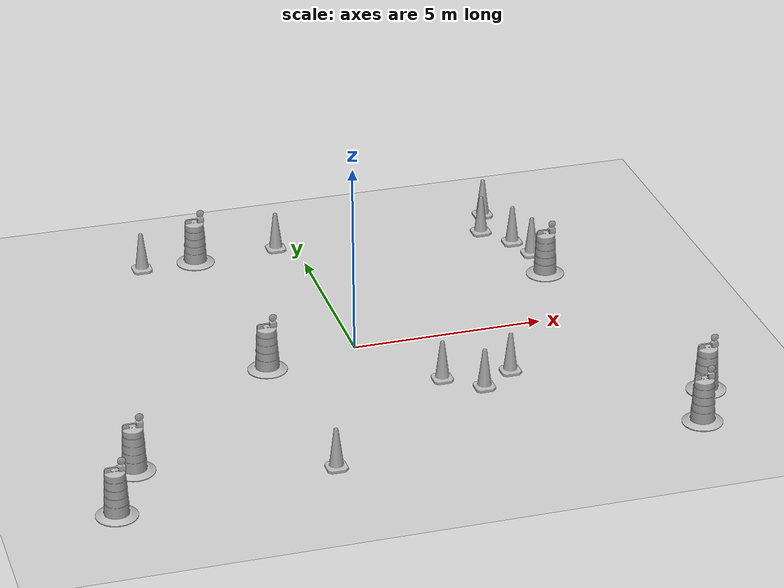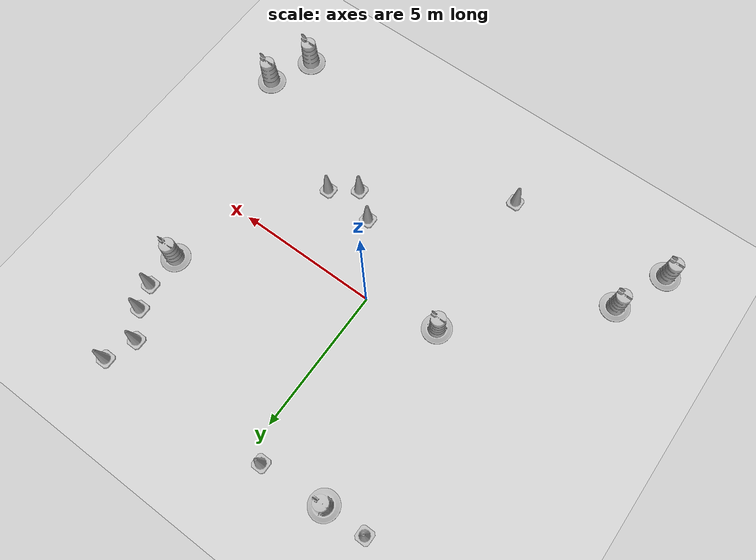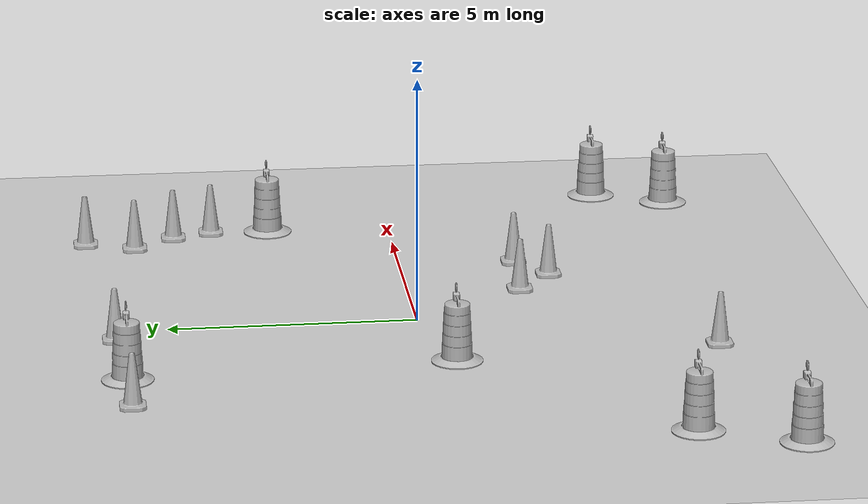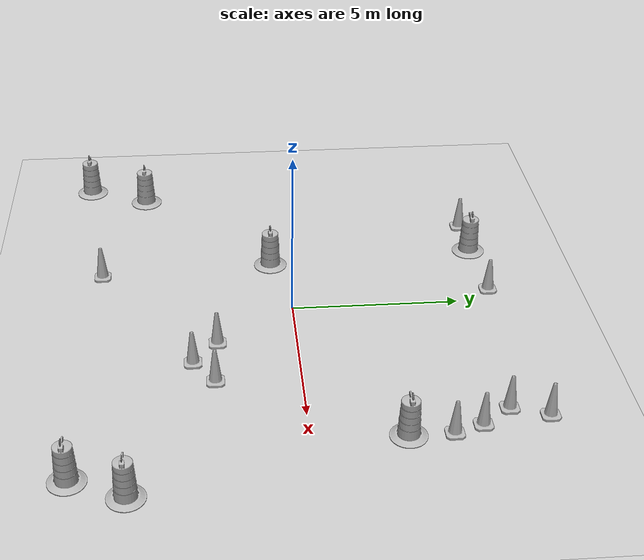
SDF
<sdf version="1.7">
 <world name="default">
  <light name="sun" type="directional">
   <pose>0 0 10 0 -0 0</pose>
   <diffuse>0.8 0.8 0.8 1</diffuse>
   <specular>0.2 0.2 0.2 1</specular>
   <attenuation>
    <range>1000</range>
    <constant>0.9</constant>
    <linear>0.01</linear>
    <quadratic>0.001</quadratic>
   </attenuation>
   <direction>-0.5 0.1 -0.9</direction>
   <spot><inner_angle>0</inner_angle><outer_angle>0</outer_angle><falloff>0</falloff></spot>
  </light>
  <model name="ground_plane">
   <static>1</static>
   <link name="link">
    <collision name="collision">
     <geometry><plane><normal>0 0 1</normal><size>100 100</size></plane></geometry>
     <surface>
      <contact><collide_bitmask>65535</collide_bitmask></contact>
      <friction><ode><mu>100</mu><mu2>50</mu2></ode></friction>
     </surface>
    </collision>
    <visual name="visual">
     <cast_shadows>0</cast_shadows>
     <geometry><plane><normal>0 0 1</normal><size>100 100</size></plane></geometry>
     <material>
      <script><uri>file://media/materials/scripts/gazebo.material</uri><name>Gazebo/Grey</name></script>
     </material>
    </visual>
   </link>
  </model>
  <gravity>0 0 -9.8</gravity>
  <magnetic_field>6e-06 2.3e-05 -4.2e-05</magnetic_field>
  <atmosphere type="adiabatic"/>
  <physics type="ode">
   <max_step_size>0.001</max_step_size>
   <real_time_factor>1</real_time_factor>
   <real_time_update_rate>1000</real_time_update_rate>
  </physics>
  <scene><ambient>0.4 0.4 0.4 1</ambient><background>0.7 0.7 0.7 1</background><shadows>1</shadows></scene>
  <audio><device>default</device></audio>
  <spherical_coordinates>
   <surface_model>EARTH_WGS84</surface_model>
   <latitude_deg>0</latitude_deg>
   <longitude_deg>0</longitude_deg>
   <elevation>0</elevation>
   <heading_deg>0</heading_deg>
  </spherical_coordinates>
  <model name="Construction Barrel">
   <link name="link">
    <inertial>
     <pose>0 0 0.4 0 -0 0</pose>
     <mass>500</mass>
     <inertia><ixx>51.2096</ixx><iyy>51.2096</iyy><izz>25</izz><ixy>0</ixy><ixz>0</ixz><iyz>0</iyz></inertia>
    </inertial>
    <collision name="collision">
     <geometry><mesh><uri>model://construction_barrel/meshes/construction_barrel.dae</uri></mesh></geometry>
    </collision>
    <visual name="visual">
     <geometry><mesh><uri>model://construction_barrel/meshes/construction_barrel.dae</uri></mesh></geometry>
    </visual>
   </link>
   <pose>-2.43061 -0.515248 1e-06 3e-06 2e-06 -2.6e-05</pose>
  </model>
  <model name="Construction Barrel_0">
   <link name="link">
    <inertial>
     <pose>0 0 0.4 0 -0 0</pose>
     <mass>500</mass>
     <inertia><ixx>51.2096</ixx><iyy>51.2096</iyy><izz>25</izz><ixy>0</ixy><ixz>0</ixz><iyz>0</iyz></inertia>
    </inertial>
    <collision name="collision">
     <geometry><mesh><uri>model://construction_barrel/meshes/construction_barrel.dae</uri></mesh></geometry>
    </collision>
    <visual name="visual">
     <geometry><mesh><uri>model://construction_barrel/meshes/construction_barrel.dae</uri></mesh></geometry>
    </visual>
   </link>
   <pose>6.02642 2.56673 1e-06 3e-06 2e-06 -2.5e-05</pose>
  </model>
  <model name="Construction Cone">
   <link name="link">
    <collision name="collision">
     <geometry>
      <mesh><scale>10 10 10</scale><uri>model://construction_cone/meshes/construction_cone.dae</uri></mesh>
     </geometry>
    </collision>
    <visual name="visual">
     <geometry>
      <mesh><scale>10 10 10</scale><uri>model://construction_cone/meshes/construction_cone.dae</uri></mesh>
     </geometry>
    </visual>
    <inertial>
     <inertia><ixx>1</ixx><ixy>0</ixy><ixz>0</ixz><iyy>1</iyy><iyz>0</iyz><izz>1</izz></inertia>
     <mass>1</mass>
    </inertial>
   </link>
   <pose>3.41913 -2.38692 -0 0 -0 0</pose>
  </model>
  <model name="Construction Cone_0">
   <link name="link">
    <collision name="collision">
     <geometry>
      <mesh><scale>10 10 10</scale><uri>model://construction_cone/meshes/construction_cone.dae</uri></mesh>
     </geometry>
    </collision>
    <visual name="visual">
     <geometry>
      <mesh><scale>10 10 10</scale><uri>model://construction_cone/meshes/construction_cone.dae</uri></mesh>
     </geometry>
    </visual>
    <inertial>
     <inertia><ixx>1</ixx><ixy>0</ixy><ixz>0</ixz><iyy>1</iyy><iyz>0</iyz><izz>1</izz></inertia>
     <mass>1</mass>
    </inertial>
   </link>
   <pose>1.65296 -2.28962 -0 0 -0 0</pose>
  </model>
  <model name="Construction Cone_1">
   <link name="link">
    <collision name="collision">
     <geometry>
      <mesh><scale>10 10 10</scale><uri>model://construction_cone/meshes/construction_cone.dae</uri></mesh>
     </geometry>
    </collision>
    <visual name="visual">
     <geometry>
      <mesh><scale>10 10 10</scale><uri>model://construction_cone/meshes/construction_cone.dae</uri></mesh>
     </geometry>
    </visual>
    <inertial>
     <inertia><ixx>1</ixx><ixy>0</ixy><ixz>0</ixz><iyy>1</iyy><iyz>0</iyz><izz>1</izz></inertia>
     <mass>1</mass>
    </inertial>
   </link>
   <pose>-2.05495 -5.76417 -4e-06 4e-06 -1e-06 0</pose>
  </model>
  <model name="Construction Cone_2">
   <link name="link">
    <collision name="collision">
     <geometry>
      <mesh><scale>10 10 10</scale><uri>model://construction_cone/meshes/construction_cone.dae</uri></mesh>
     </geometry>
    </collision>
    <visual name="visual">
     <geometry>
      <mesh><scale>10 10 10</scale><uri>model://construction_cone/meshes/construction_cone.dae</uri></mesh>
     </geometry>
    </visual>
    <inertial>
     <inertia><ixx>1</ixx><ixy>0</ixy><ixz>0</ixz><iyy>1</iyy><iyz>0</iyz><izz>1</izz></inertia>
     <mass>1</mass>
    </inertial>
   </link>
   <pose>-0.540461 6.05297 -0 0 -0 0</pose>
  </model>
  <model name="Construction Barrel_1">
   <link name="link">
    <inertial>
     <pose>0 0 0.4 0 -0 0</pose>
     <mass>500</mass>
     <inertia><ixx>51.2096</ixx><iyy>51.2096</iyy><izz>25</izz><ixy>0</ixy><ixz>0</ixz><iyz>0</iyz></inertia>
    </inertial>
    <collision name="collision">
     <geometry><mesh><uri>model://construction_barrel/meshes/construction_barrel.dae</uri></mesh></geometry>
    </collision>
    <visual name="visual">
     <geometry><mesh><uri>model://construction_barrel/meshes/construction_barrel.dae</uri></mesh></geometry>
    </visual>
   </link>
   <pose>-2.81829 5.89802 -0 0 0 -1.8e-05</pose>
  </model>
  <model name="Construction Barrel_2">
   <link name="link">
    <inertial>
     <pose>0 0 0.4 0 -0 0</pose>
     <mass>500</mass>
     <inertia><ixx>51.2096</ixx><iyy>51.2096</iyy><izz>25</izz><ixy>0</ixy><ixz>0</ixz><iyz>0</iyz></inertia>
    </inertial>
    <collision name="collision">
     <geometry><mesh><uri>model://construction_barrel/meshes/construction_barrel.dae</uri></mesh></geometry>
    </collision>
    <visual name="visual">
     <geometry><mesh><uri>model://construction_barrel/meshes/construction_barrel.dae</uri></mesh></geometry>
    </visual>
   </link>
   <pose>7.14048 -6.16711 -2e-06 8e-06 -4e-06 -1.7e-05</pose>
  </model>
  <model name="Construction Cone_3">
   <link name="link">
    <collision name="collision">
     <geometry>
      <mesh><scale>10 10 10</scale><uri>model://construction_cone/meshes/construction_cone.dae</uri></mesh>
     </geometry>
    </collision>
    <visual name="visual">
     <geometry>
      <mesh><scale>10 10 10</scale><uri>model://construction_cone/meshes/construction_cone.dae</uri></mesh>
     </geometry>
    </visual>
    <inertial>
     <inertia><ixx>1</ixx><ixy>0</ixy><ixz>0</ixz><iyy>1</iyy><iyz>0</iyz><izz>1</izz></inertia>
     <mass>1</mass>
    </inertial>
   </link>
   <pose>6.04185 3.77989 -0 0 -0 0</pose>
  </model>
  <model name="Construction Cone_4">
   <link name="link">
    <collision name="collision">
     <geometry>
      <mesh><scale>10 10 10</scale><uri>model://construction_cone/meshes/construction_cone.dae</uri></mesh>
     </geometry>
    </collision>
    <visual name="visual">
     <geometry>
      <mesh><scale>10 10 10</scale><uri>model://construction_cone/meshes/construction_cone.dae</uri></mesh>
     </geometry>
    </visual>
    <inertial>
     <inertia><ixx>1</ixx><ixy>0</ixy><ixz>0</ixz><iyy>1</iyy><iyz>0</iyz><izz>1</izz></inertia>
     <mass>1</mass>
    </inertial>
   </link>
   <pose>5.75737 4.59202 -0 0 -0 0</pose>
  </model>
  <model name="Construction Cone_5">
   <link name="link">
    <collision name="collision">
     <geometry>
      <mesh><scale>10 10 10</scale><uri>model://construction_cone/meshes/construction_cone.dae</uri></mesh>
     </geometry>
    </collision>
    <visual name="visual">
     <geometry>
      <mesh><scale>10 10 10</scale><uri>model://construction_cone/meshes/construction_cone.dae</uri></mesh>
     </geometry>
    </visual>
    <inertial>
     <inertia><ixx>1</ixx><ixy>0</ixy><ixz>0</ixz><iyy>1</iyy><iyz>0</iyz><izz>1</izz></inertia>
     <mass>1</mass>
    </inertial>
   </link>
   <pose>5.12979 5.43484 -6e-06 2e-06 -0 0</pose>
  </model>
  <model name="Construction Barrel_3">
   <link name="link">
    <inertial>
     <pose>0 0 0.4 0 -0 0</pose>
     <mass>500</mass>
     <inertia><ixx>51.2096</ixx><iyy>51.2096</iyy><izz>25</izz><ixy>0</ixy><ixz>0</ixz><iyz>0</iyz></inertia>
    </inertial>
    <collision name="collision">
     <geometry><mesh><uri>model://construction_barrel/meshes/construction_barrel.dae</uri></mesh></geometry>
    </collision>
    <visual name="visual">
     <geometry><mesh><uri>model://construction_barrel/meshes/construction_barrel.dae</uri></mesh></geometry>
    </visual>
   </link>
   <pose>-7.52149 -6.40092 -1e-06 0 5e-06 -1e-05</pose>
  </model>
  <model name="Construction Barrel_4">
   <link name="link">
    <inertial>
     <pose>0 0 0.4 0 -0 0</pose>
     <mass>500</mass>
     <inertia><ixx>51.2096</ixx><iyy>51.2096</iyy><izz>25</izz><ixy>0</ixy><ixz>0</ixz><iyz>0</iyz></inertia>
    </inertial>
    <collision name="collision">
     <geometry><mesh><uri>model://construction_barrel/meshes/construction_barrel.dae</uri></mesh></geometry>
    </collision>
    <visual name="visual">
     <geometry><mesh><uri>model://construction_barrel/meshes/construction_barrel.dae</uri></mesh></geometry>
    </visual>
   </link>
   <pose>-6.70364 -4.51847 -2e-06 -0 7e-06 -8e-06</pose>
  </model>
  <model name="Construction Cone_6">
   <link name="link">
    <collision name="collision">
     <geometry>
      <mesh><scale>10 10 10</scale><uri>model://construction_cone/meshes/construction_cone.dae</uri></mesh>
     </geometry>
    </collision>
    <visual name="visual">
     <geometry>
      <mesh><scale>10 10 10</scale><uri>model://construction_cone/meshes/construction_cone.dae</uri></mesh>
     </geometry>
    </visual>
    <inertial>
     <inertia><ixx>1</ixx><ixy>0</ixy><ixz>0</ixz><iyy>1</iyy><iyz>0</iyz><izz>1</izz></inertia>
     <mass>1</mass>
    </inertial>
   </link>
   <pose>2.53967 -2.99938 -0 0 -1e-06 0</pose>
  </model>
  <model name="Construction Cone_7">
   <link name="link">
    <collision name="collision">
     <geometry>
      <mesh><scale>10 10 10</scale><uri>model://construction_cone/meshes/construction_cone.dae</uri></mesh>
     </geometry>
    </collision>
    <visual name="visual">
     <geometry>
      <mesh><scale>10 10 10</scale><uri>model://construction_cone/meshes/construction_cone.dae</uri></mesh>
     </geometry>
    </visual>
    <inertial>
     <inertia><ixx>1</ixx><ixy>0</ixy><ixz>0</ixz><iyy>1</iyy><iyz>0</iyz><izz>1</izz></inertia>
     <mass>1</mass>
    </inertial>
   </link>
   <pose>-4.30119 5.86013 -1e-06 3e-06 -1e-06 0</pose>
  </model>
  <model name="Construction Barrel_5">
   <link name="link">
    <inertial>
     <pose>0 0 0.4 0 -0 0</pose>
     <mass>500</mass>
     <inertia><ixx>51.2096</ixx><iyy>51.2096</iyy><izz>25</izz><ixy>0</ixy><ixz>0</ixz><iyz>0</iyz></inertia>
    </inertial>
    <collision name="collision">
     <geometry><mesh><uri>model://construction_barrel/meshes/construction_barrel.dae</uri></mesh></geometry>
    </collision>
    <visual name="visual">
     <geometry><mesh><uri>model://construction_barrel/meshes/construction_barrel.dae</uri></mesh></geometry>
    </visual>
   </link>
   <pose>7.81247 -4.67927 0 0 0 -3e-06</pose>
  </model>
  <model name="Construction Cone_8">
   <link name="link">
    <collision name="collision">
     <geometry>
      <mesh><scale>10 10 10</scale><uri>model://construction_cone/meshes/construction_cone.dae</uri></mesh>
     </geometry>
    </collision>
    <visual name="visual">
     <geometry>
      <mesh><scale>10 10 10</scale><uri>model://construction_cone/meshes/construction_cone.dae</uri></mesh>
     </geometry>
    </visual>
    <inertial>
     <inertia><ixx>1</ixx><ixy>0</ixy><ixz>0</ixz><iyy>1</iyy><iyz>0</iyz><izz>1</izz></inertia>
     <mass>1</mass>
    </inertial>
   </link>
   <pose>5.50392 6.4547 -0 0 -1e-06 0</pose>
  </model>
 </world>
</sdf>
